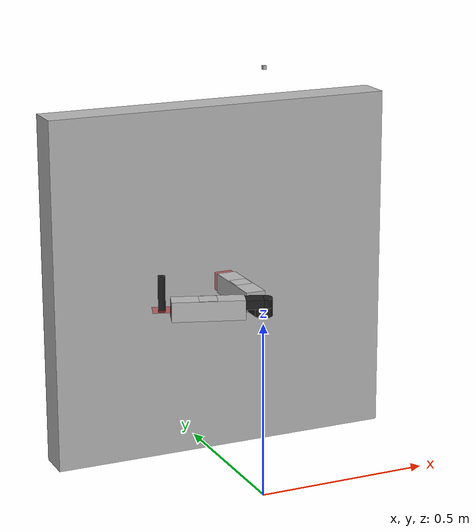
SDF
<sdf version='1.6'>
  <model name='wall_fb_1r1p'>
    <link name='first_link'>
      <gravity>0</gravity>
      <pose frame=''>0 0 0.55 0 -0 0</pose>
      <inertial>
        <pose frame=''>0 0.135 0 0 -0 0</pose>
        <mass>1</mass>
        <inertia>
          <ixx>0.00526</ixx>
          <ixy>0</ixy>
          <ixz>0</ixz>
          <iyy>0.00026</iyy>
          <iyz>0</iyz>
          <izz>0.00541667</izz>
        </inertia>
      </inertial>
      <collision name='first_link_collision'>
        <pose frame=''>0 0 -0.01255 0 -0 0</pose>
        <geometry>
          <cylinder>
            <length>0.025</length>
            <radius>0.025</radius>
          </cylinder>
        </geometry>
      </collision>
      <collision name='first_link_collision_1'>
        <pose frame=''>0 0.05 -0.0125 0 -0 0</pose>
        <geometry>
          <box>
            <size>0.05 0.1 0.025</size>
          </box>
        </geometry>
      </collision>
      <collision name='first_link_collision_2'>
        <pose frame=''>0 0.15 0 0 -0 0</pose>
        <geometry>
          <box>
            <size>0.05 0.2 0.05</size>
          </box>
        </geometry>
      </collision>

      <visual name='first_link_visual'>
        <pose frame=''>0 0 -0.0125 0 -0 0</pose>
        <geometry>
          <cylinder>
            <length>0.025</length>
            <radius>0.025</radius>
          </cylinder>
        </geometry>
        <material>
          <script>
            <name>Gazebo/Black</name>
            <uri>file://media/materials/scripts/gazebo.material</uri>
          </script>
        </material>
      </visual>
      <visual name='first_link_visual_1'>
        <pose frame=''>0 0.05 -0.01255 0 -0 0</pose>
        <geometry>
          <box>
            <size>0.05 0.1 0.025</size>
          </box>
        </geometry>
        <material>
          <script>
            <name>Gazebo/Black</name>
            <uri>file://media/materials/scripts/gazebo.material</uri>
          </script>
        </material>
      </visual>
      <visual name='first_link_visual_2'>
        <pose frame=''>0 0.15 0 0 -0 0</pose>
        <geometry>
          <box>
            <size>0.055 0.2 0.055</size>
          </box>
        </geometry>
      </visual>
    </link>

    <link name='first_link_marker'>
      <gravity>0</gravity>
      <pose frame=''>0 0.15 0.578 0 -0 0</pose>
      <inertial>
        <pose frame=''>0 0 0 0 0 0 </pose>
        <mass>0.0001</mass>
        <inertia>
          <ixx>0.0001</ixx>
          <ixy>0</ixy>
          <ixz>0</ixz>
          <iyy>0.0001</iyy>
          <iyz>0</iyz>
          <izz>0.0001</izz>
        </inertia>
      </inertial>
      <visual name='first_link_marker'>
        <geometry>
          <box>
            <size>0.05 0.05 0.00001</size>
          </box>
        </geometry>
        <material>
          <script>
            <uri>model://wall_fb_1r1p/materials/scripts/marker5.material</uri>
            <uri>model://wall_fb_1r1p/materials/textures</uri>
            <name>myMarker5</name>
          </script>
        </material>
      </visual>
    </link>

    <joint name='first_marker_fixed' type='fixed'>
      <pose frame=''>0 0 0 0 -0 0</pose>
      <child>first_link_marker</child>
      <parent>first_link</parent>
      <axis>
        <dynamics>
          <damping>0</damping>
          <friction>0</friction>
          <spring_reference>0</spring_reference>
          <spring_stiffness>0</spring_stiffness>
        </dynamics>
        <use_parent_model_frame>1</use_parent_model_frame>
        <xyz>0 0 0</xyz>
      </axis>
    </joint>

    <joint name='anchor' type='fixed'>
      <child>wall</child>
      <parent>world</parent>
      <axis>
        <xyz>0 0 0</xyz>
      </axis>
    </joint>
    <link name='wall_dummy'>
      <gravity>0</gravity>
      <pose frame=''>0 0.275 0.55 0 -0 0</pose>
      <inertial>
      <pose frame=''>0 0 0 0 0 0</pose>
        <mass>0.0001</mass>
        <inertia>
          <ixx>0.0001</ixx>
          <ixy>0</ixy>
          <ixz>0</ixz>
          <iyy>0.0001</iyy>
          <iyz>0</iyz>
          <izz>0.0001</izz>
        </inertia>
      </inertial>
      <collision name='wall_dummy_collision'>
        <pose frame=''>0 0 0 0 -0 0</pose>
        <geometry>
          <box>
            <size>0.05 0.05 0.05</size>
          </box>
        </geometry>
      </collision>
      <visual name='wall_dummy_visual'>
        <pose frame=''>0 0 0 0 -0 0</pose>
        <geometry>
          <box>
            <size>0.05 0.05 0.05</size>
          </box>
        </geometry>
        <material>
          <script>
            <name>Gazebo/RedTransparentOverlay</name>
            <uri>file://media/materials/scripts/gazebo.material</uri>
          </script>
        </material>
      </visual>
    </link>
    <joint name='first_link_handle_joint' type='fixed'>
      <pose frame=''>0 0 0 0 -0 0</pose>
      <child>wall_dummy</child>
      <parent>first_link</parent>
      <axis>
        <dynamics>
          <damping>0</damping>
          <friction>0</friction>
          <spring_reference>0</spring_reference>
          <spring_stiffness>0</spring_stiffness>
        </dynamics>
        <use_parent_model_frame>1</use_parent_model_frame>
        <xyz>0 0 0</xyz>
      </axis>
      <sensor name='first_link_wall_ft' type='force_torque'>
        <always_on>1</always_on>
        <update_rate>100</update_rate>
        <pose>0 0 0 0 0 0</pose>
        <plugin name='first_link_wall_ft_plugin' filename='libgazebo_yarp_forcetorque.so'>
          <yarpConfigurationFile>model://wall_fb_1r1p/conf/first_link_handle_ft.ini</yarpConfigurationFile>
          <frame>child</frame>
          <measured_direction>child_to_parent</measured_direction>
        </plugin>
      </sensor>
    </joint>
    <link name='wall'>
      <gravity>0</gravity>
      <pose frame=''>0 0.275 0.55 0 -0 0</pose>
      <inertial>
      <pose frame=''>0 0 0 0 0 0</pose>
        <mass>0.0001</mass>
        <inertia>
          <ixx>0.0001</ixx>
          <ixy>0</ixy>
          <ixz>0</ixz>
          <iyy>0.0001</iyy>
          <iyz>0</iyz>
          <izz>0.0001</izz>
        </inertia>
      </inertial>
      <collision name='wall_dummy_collision'>
        <pose frame=''>0 0.05 0 0 -0 0</pose>
        <geometry>
          <box>
            <size>1 0.1 1</size>
          </box>
        </geometry>
      </collision>
      <visual name='wall_dummy_visual'>
        <pose frame=''>0 0.05 0 0 -0 0</pose>
        <geometry>
          <box>
            <size>1 0.1 1</size>
          </box>
        </geometry>
      </visual>
    </link>
    <joint name='wall_joint' type='fixed'>
      <pose frame=''>0 0 0 0 -0 0</pose>
      <child>wall</child>
      <parent>wall_dummy</parent>
      <axis>
        <dynamics>
          <damping>0</damping>
          <friction>0</friction>
          <spring_reference>0</spring_reference>
          <spring_stiffness>0</spring_stiffness>
        </dynamics>
        <use_parent_model_frame>1</use_parent_model_frame>
        <xyz>0 0 0</xyz>
      </axis>
    </joint>
    <link name='middle_link'>
      <gravity>0</gravity>
      <pose frame=''>0 0 0.55 0 -0 1.256</pose>
      <inertial>
      <pose frame=''>0 0 0 0 0 0</pose>
        <mass>0.0001</mass>
        <inertia>
          <ixx>0.0001</ixx>
          <ixy>0</ixy>
          <ixz>0</ixz>
          <iyy>0.0001</iyy>
          <iyz>0</iyz>
          <izz>0.0001</izz>
        </inertia>
      </inertial>
      <collision name='middle_link_collision'>
        <pose frame=''>0 0 0.01255 0 -0 0</pose>
        <geometry>
          <cylinder>
            <length>0.025</length>
            <radius>0.025</radius>
          </cylinder>
        </geometry>
      </collision>
      <collision name='middle_link_collision_1'>
        <pose frame=''>0 0.05 0.0125 0 -0 0</pose>
        <geometry>
          <box>
            <size>0.05 0.1 0.025</size>
          </box>
        </geometry>
      </collision>
      <collision name='middle_link_collision_2'>
        <pose frame=''>0 0.15 0 0 -0 0</pose>
        <geometry>
          <box>
            <size>0.05 0.2 0.05</size>
          </box>
        </geometry>
      </collision>
      <visual name='middle_link_visual'>
        <pose frame=''>0 0 0.0125 0 -0 0</pose>
        <geometry>
          <cylinder>
            <length>0.025</length>
            <radius>0.025</radius>
          </cylinder>
        </geometry>
        <material>
          <script>
            <name>Gazebo/Black</name>
            <uri>file://media/materials/scripts/gazebo.material</uri>
          </script>
        </material>
      </visual>
      <visual name='middle_link_visual_1'>
        <pose frame=''>0 0.05 0.01255 0 -0 0</pose>
        <geometry>
          <box>
            <size>0.05 0.1 0.025</size>
          </box>
        </geometry>
        <material>
          <script>
            <name>Gazebo/Black</name>
            <uri>file://media/materials/scripts/gazebo.material</uri>
          </script>
        </material>
      </visual>
      <visual name='middle_link_visual_2'>
        <pose frame=''>0 0.15 0 0 -0 0</pose>
        <geometry>
          <box>
            <size>0.05 0.2 0.05</size>
          </box>
        </geometry>
        <material>
          <script>
            <name>Gazebo/Black</name>
            <uri>file://media/materials/scripts/gazebo.material</uri>
          </script>
        </material>
      </visual>
    </link>
    <joint name='first_joint' type='revolute'>
      <child>middle_link</child>
      <parent>first_link</parent>
      <axis>
        <xyz>0 0 1</xyz>
        <limit>
          <lower>0</lower>
          <upper>3.14</upper>
          <effort>30</effort>
          <velocity>10</velocity>
        </limit>
        <dynamics>
          <spring_reference>0</spring_reference>
          <spring_stiffness>0</spring_stiffness>
        </dynamics>
        <use_parent_model_frame>1</use_parent_model_frame>
      </axis>
    </joint>
    <link name='second_link'>
      <gravity>0</gravity>
      <pose frame=''>0 0 0.55 0 -0 1.256</pose>
      <inertial>
        <pose frame=''>0 0.135 0 0 -0 0</pose>
        <mass>1</mass>
        <inertia>
          <ixx>0.00526</ixx>
          <ixy>0</ixy>
          <ixz>0</ixz>
          <iyy>0.00026</iyy>
          <iyz>0</iyz>
          <izz>0.00541667</izz>
        </inertia>
      </inertial>
      <collision name='second_link_collision'>
        <pose frame=''>0 0.15 0 0 -0 0</pose>
        <geometry>
          <box>
            <size>0.05 0.2 0.05</size>
          </box>
        </geometry>
      </collision>
      <collision name='second_link_collision_1'>
        <pose frame=''>0 0.275 0 0 0 0</pose>
        <geometry>
          <box>
            <size>0.05 0.05 0.002</size>
          </box>
        </geometry>
      </collision>
      <visual name='second_link_visual'>
        <pose frame=''>0 0.15 0 0 -0 0</pose>
        <geometry>
          <box>
            <size>0.055 0.2 0.055</size>
          </box>
        </geometry>
      </visual>
      <visual name='second_link_visual_1'>
        <pose frame=''>0 0.275 0 0 -0 0</pose>
        <geometry>
          <box>
            <size>0.05 0.05 0.002</size>
          </box>
        </geometry>
        <material>
          <script>
            <name>Gazebo/RedTransparentOverlay</name>
            <uri>file://media/materials/scripts/gazebo.material</uri>
          </script>
        </material>
      </visual>
    </link>

    <link name='second_link_marker'>
      <gravity>0</gravity>
      <pose frame=''>-0.143 0.046 0.578 0 -0 1.256</pose>
      <inertial>
      <pose frame=''>0 0 0 0 0 0</pose>
        <mass>0.0001</mass>
        <inertia>
          <ixx>0.0001</ixx>
          <ixy>0</ixy>
          <ixz>0</ixz>
          <iyy>0.0001</iyy>
          <iyz>0</iyz>
          <izz>0.0001</izz>
        </inertia>
      </inertial>
      <visual name='second_link_marker'>
        <geometry>
          <box>
            <size>0.05 0.05 0.00001</size>
          </box>
        </geometry>
        <material>
          <script>
            <uri>model://wall_fb_1r1p/materials/scripts/marker2.material</uri>
            <uri>model://wall_fb_1r1p/materials/textures</uri>
            <name>myMarker2</name>
          </script>
        </material>
      </visual>
    </link>

    <joint name='second_marker_fixed' type='fixed'>
      <pose frame=''>0 0 0 0 -0 0</pose>
      <child>second_link_marker</child>
      <parent>second_link</parent>
      <axis>
        <dynamics>
          <damping>0</damping>
          <friction>0</friction>
          <spring_reference>0</spring_reference>
          <spring_stiffness>0</spring_stiffness>
        </dynamics>
        <use_parent_model_frame>1</use_parent_model_frame>
        <xyz>0 0 0</xyz>
      </axis>
    </joint>

    <joint name='second_joint' type='prismatic'>
      <child>second_link</child>
      <parent>middle_link</parent>
      <axis>
        <xyz>-0.950859 0.309623 0</xyz>
        <limit>
          <lower>0</lower>
          <upper>0.1</upper>
          <effort>30</effort>
          <velocity>10</velocity>
        </limit>
        <dynamics>
          <spring_reference>0</spring_reference>
          <spring_stiffness>0</spring_stiffness>
        </dynamics>
        <use_parent_model_frame>1</use_parent_model_frame>
      </axis>
    </joint>
    <link name='second_link_handle'>
      <gravity>0</gravity>
      <pose frame=''>-0.261 0.085 0.55 0 -0 1.256</pose>
      <inertial>
      <pose frame=''>0 0 0 0 0 0</pose>
        <mass>0.0001</mass>
        <inertia>
          <ixx>0.0001</ixx>
          <ixy>0</ixy>
          <ixz>0</ixz>
          <iyy>0.0001</iyy>
          <iyz>0</iyz>
          <izz>0.0001</izz>
        </inertia>
      </inertial>
      <collision name='second_link_handle_collision'>
        <pose frame=''>0 0 0.045 0 -0 0</pose>
        <geometry>
          <cylinder>
            <length>0.1</length>
            <radius>0.01</radius>
          </cylinder>
        </geometry>
      </collision>
      <visual name='second_link_handle_visual'>
        <pose frame=''>0 0 0.045 0 -0 0</pose>
        <geometry>
          <cylinder>
            <length>0.1</length>
            <radius>0.01</radius>
          </cylinder>
        </geometry>
        <material>
          <script>
            <name>Gazebo/Black</name>
            <uri>file://media/materials/scripts/gazebo.material</uri>
          </script>
        </material>
      </visual>
    </link>
    <joint name='second_link_handle_joint' type='fixed'>
      <pose frame=''>0 0 0.0 0 -0 0</pose>
      <child>second_link_handle</child>
      <parent>second_link</parent>
      <axis>
        <dynamics>
          <damping>0</damping>
          <friction>0</friction>
          <spring_reference>0</spring_reference>
          <spring_stiffness>0</spring_stiffness>
        </dynamics>
        <use_parent_model_frame>1</use_parent_model_frame>
        <xyz>0 0 0</xyz>
      </axis>
      <sensor name='second_link_handle_ft' type='force_torque'>
        <always_on>1</always_on>
        <update_rate>100</update_rate>
        <pose>0 0 0 0 0 0</pose>
        <plugin name='second_link_handle_ft_plugin' filename='libgazebo_yarp_forcetorque.so'>
          <yarpConfigurationFile>model://wall_fb_1r1p/conf/second_link_handle_ft.ini</yarpConfigurationFile>
          <frame>child</frame>
          <measured_direction>child_to_parent</measured_direction>
        </plugin>
      </sensor>
    </joint>

    <!--Gazebo Yarp Plugin-->
    <plugin name="controlboard" filename="libgazebo_yarp_controlboard.so">
      <yarpConfigurationFile>model://wall_fb_1r1p/conf/gazebo_controlboard.ini</yarpConfigurationFile>
      <initialConfiguration>0.0 0.0</initialConfiguration>
    </plugin>

    <plugin name="world_interface" filename="libgazebo_yarp_worldinterface.so">
      <yarpConfigurationFile>model://wall_fb_1r1p/conf/gazebo_worldinterface.ini</yarpConfigurationFile>
    </plugin>

    <plugin name='second_link_handle_multi_ext_wrench' filename='libgazebo_yarp_multiexternalwrench.so'>
      <robotNamefromConfigFile>model://wall_fb_1r1p/conf/gazebo_1r1p_robotname.ini</robotNamefromConfigFile>
    </plugin>

    <plugin name='access_link_pose' filename='libgazebo_yarp_accesslinkpose.so'>
      <yarpConfigurationFile>model://wall_fb_1r1p/conf/gazebo_accesslinkpose.ini</yarpConfigurationFile>
    </plugin>

    <link name="camera_link">
      <gravity>0</gravity>
      <!--This pose is perfect-->
      <pose frame=''>0 0 1.2 0 1.57 0</pose>
      <visual name="camera_link_visual">
        <geometry>
          <box>
            <size>0.01 0.01 0.01</size>
          </box>
        </geometry>
      </visual>
      <sensor name="camera_sensor" type="camera">
        <camera>
          <horizontal_fov>1.5708</horizontal_fov>
          <image>
            <width>640</width>
            <height>480</height>
          </image>
          <clip>
            <near>0.1</near>
            <far>100</far>
          </clip>
          <distortion>
            <k1>-0.4</k1>
            <k2>-0.5</k2>
            <k3>-0.3</k3>
            <p1>-0.0</p1>
            <p2>-0.0</p2>
            <center>0.5 0.5</center>
          </distortion>
        </camera>
        <always_on>1</always_on>
        <update_rate>30</update_rate>
        <visualize>true</visualize>
        <plugin name="camera_plugin" filename="libgazebo_yarp_camera.so">
          <yarpConfigurationFile>model://wall_fb_1r1p/conf/camera.ini</yarpConfigurationFile>
        </plugin>
      </sensor>
    </link>
  </model>
</sdf>
